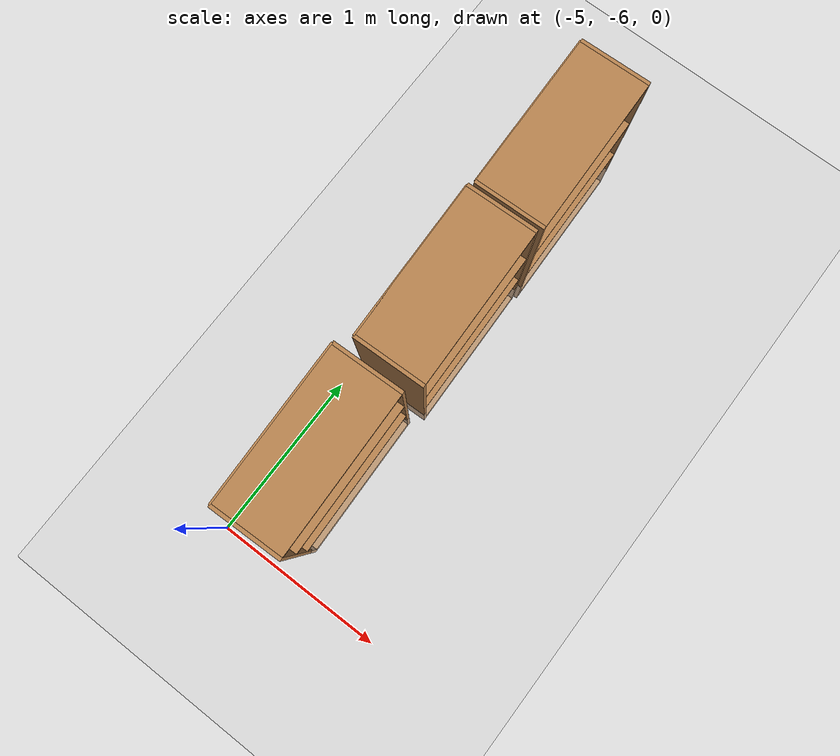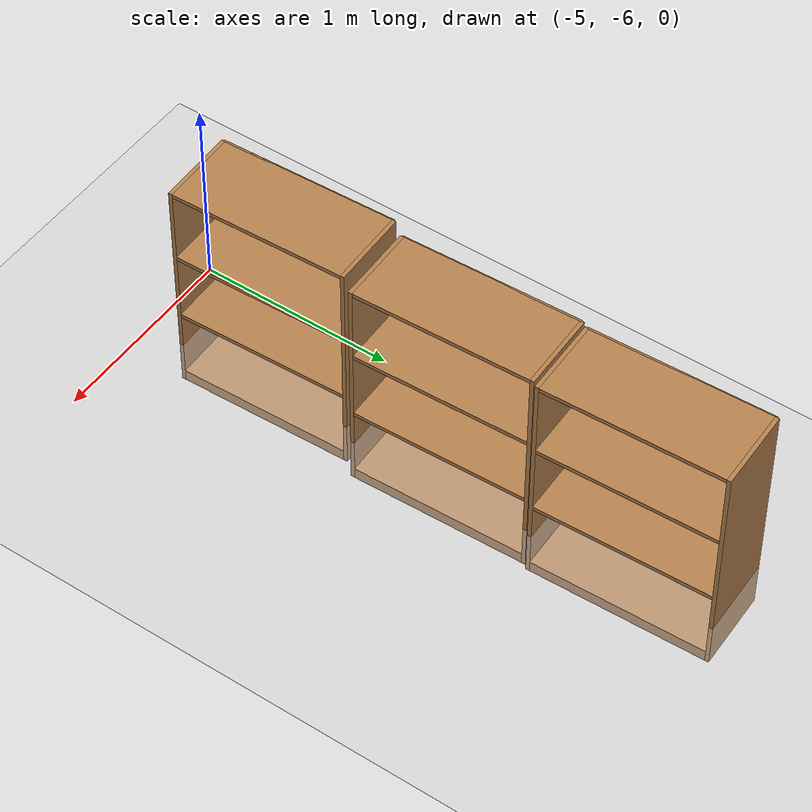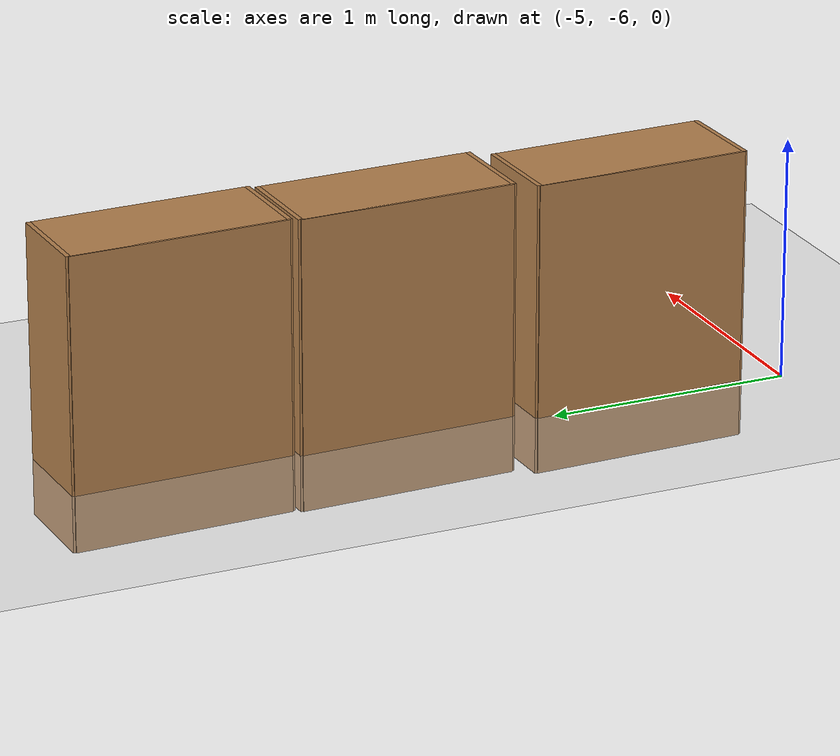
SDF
<sdf version="1.7">
 <world name="default">
  <light name="sun" type="directional">
   <pose>0 0 10 0 -0 0</pose>
   <diffuse>0.8 0.8 0.8 1</diffuse>
   <specular>0.2 0.2 0.2 1</specular>
   <attenuation>
    <range>1000</range>
    <constant>0.9</constant>
    <linear>0.01</linear>
    <quadratic>0.001</quadratic>
   </attenuation>
   <direction>-0.5 0.1 -0.9</direction>
   <spot><inner_angle>0</inner_angle><outer_angle>0</outer_angle><falloff>0</falloff></spot>
  </light>
  <model name="ground_plane">
   <static>1</static>
   <link name="link">
    <collision name="collision">
     <geometry><plane><normal>0 0 1</normal><size>100 100</size></plane></geometry>
     <surface>
      <contact><collide_bitmask>65535</collide_bitmask></contact>
      <friction><ode><mu>100</mu><mu2>50</mu2></ode></friction>
     </surface>
    </collision>
    <visual name="visual">
     <cast_shadows>0</cast_shadows>
     <geometry><plane><normal>0 0 1</normal><size>100 100</size></plane></geometry>
     <material>
      <script><uri>file://media/materials/scripts/gazebo.material</uri><name>Gazebo/Grey</name></script>
     </material>
    </visual>
   </link>
  </model>
  <gravity>0 0 -9.8</gravity>
  <magnetic_field>6e-06 2.3e-05 -4.2e-05</magnetic_field>
  <atmosphere type="adiabatic"/>
  <physics type="ode">
   <max_step_size>0.001</max_step_size>
   <real_time_factor>1</real_time_factor>
   <real_time_update_rate>1000</real_time_update_rate>
  </physics>
  <scene><ambient>0.4 0.4 0.4 1</ambient><background>0.7 0.7 0.7 1</background><shadows>1</shadows></scene>
  <spherical_coordinates>
   <surface_model>EARTH_WGS84</surface_model>
   <latitude_deg>0</latitude_deg>
   <longitude_deg>0</longitude_deg>
   <elevation>0</elevation>
   <heading_deg>0</heading_deg>
  </spherical_coordinates>
  <model name="bookshelf">
   <static>1</static>
   <link name="link">
    <inertial><mass>1</mass></inertial>
    <collision name="back">
     <pose>0 0.005 0.6 0 -0 0</pose>
     <geometry><box><size>0.9 0.01 1.2</size></box></geometry>
    </collision>
    <visual name="visual1">
     <pose>0 0.005 0.6 0 -0 0</pose>
     <geometry><box><size>0.9 0.01 1.2</size></box></geometry>
     <material>
      <script><uri>file://media/materials/scripts/gazebo.material</uri><name>Gazebo/Wood</name></script>
     </material>
    </visual>
    <collision name="left_side">
     <pose>0.45 -0.195 0.6 0 -0 0</pose>
     <geometry><box><size>0.02 0.4 1.2</size></box></geometry>
    </collision>
    <visual name="visual2">
     <pose>0.45 -0.195 0.6 0 -0 0</pose>
     <geometry><box><size>0.02 0.4 1.2</size></box></geometry>
     <material>
      <script><uri>file://media/materials/scripts/gazebo.material</uri><name>Gazebo/Wood</name></script>
     </material>
    </visual>
    <collision name="right_side">
     <pose>-0.45 -0.195 0.6 0 -0 0</pose>
     <geometry><box><size>0.02 0.4 1.2</size></box></geometry>
    </collision>
    <visual name="visual3">
     <pose>-0.45 -0.195 0.6 0 -0 0</pose>
     <geometry><box><size>0.02 0.4 1.2</size></box></geometry>
     <material>
      <script><uri>file://media/materials/scripts/gazebo.material</uri><name>Gazebo/Wood</name></script>
     </material>
    </visual>
    <collision name="bottom">
     <pose>0 -0.195 0.03 0 -0 0</pose>
     <geometry><box><size>0.88 0.4 0.06</size></box></geometry>
    </collision>
    <visual name="visual4">
     <pose>0 -0.195 0.03 0 -0 0</pose>
     <geometry><box><size>0.88 0.4 0.06</size></box></geometry>
     <material>
      <script><uri>file://media/materials/scripts/gazebo.material</uri><name>Gazebo/Wood</name></script>
     </material>
    </visual>
    <collision name="top">
     <pose>0 -0.195 1.19 0 -0 0</pose>
     <geometry><box><size>0.88 0.4 0.02</size></box></geometry>
    </collision>
    <visual name="visual5">
     <pose>0 -0.195 1.19 0 -0 0</pose>
     <geometry><box><size>0.88 0.4 0.02</size></box></geometry>
     <material>
      <script><uri>file://media/materials/scripts/gazebo.material</uri><name>Gazebo/Wood</name></script>
     </material>
    </visual>
    <collision name="low_shelf">
     <pose>0 -0.195 0.43 0 -0 0</pose>
     <geometry><box><size>0.88 0.4 0.02</size></box></geometry>
    </collision>
    <visual name="visual6">
     <pose>0 -0.195 0.43 0 -0 0</pose>
     <geometry><box><size>0.88 0.4 0.02</size></box></geometry>
     <material>
      <script><uri>file://media/materials/scripts/gazebo.material</uri><name>Gazebo/Wood</name></script>
     </material>
    </visual>
    <collision name="high_shelf">
     <pose>0 -0.195 0.8 0 -0 0</pose>
     <geometry><box><size>0.88 0.4 0.02</size></box></geometry>
    </collision>
    <visual name="visual7">
     <pose>0 -0.195 0.8 0 -0 0</pose>
     <geometry><box><size>0.88 0.4 0.02</size></box></geometry>
     <material>
      <script><uri>file://media/materials/scripts/gazebo.material</uri><name>Gazebo/Wood</name></script>
     </material>
    </visual>
   </link>
   <pose>-4.96331 -5.38402 -0.23681 0 -0 1.60019</pose>
  </model>
  <model name="bookshelf_clone">
   <static>1</static>
   <link name="link">
    <inertial><mass>1</mass></inertial>
    <collision name="back">
     <pose>0 0.005 0.6 0 -0 0</pose>
     <geometry><box><size>0.9 0.01 1.2</size></box></geometry>
    </collision>
    <visual name="visual1">
     <pose>0 0.005 0.6 0 -0 0</pose>
     <geometry><box><size>0.9 0.01 1.2</size></box></geometry>
     <material>
      <script><uri>file://media/materials/scripts/gazebo.material</uri><name>Gazebo/Wood</name></script>
     </material>
    </visual>
    <collision name="left_side">
     <pose>0.45 -0.195 0.6 0 -0 0</pose>
     <geometry><box><size>0.02 0.4 1.2</size></box></geometry>
    </collision>
    <visual name="visual2">
     <pose>0.45 -0.195 0.6 0 -0 0</pose>
     <geometry><box><size>0.02 0.4 1.2</size></box></geometry>
     <material>
      <script><uri>file://media/materials/scripts/gazebo.material</uri><name>Gazebo/Wood</name></script>
     </material>
    </visual>
    <collision name="right_side">
     <pose>-0.45 -0.195 0.6 0 -0 0</pose>
     <geometry><box><size>0.02 0.4 1.2</size></box></geometry>
    </collision>
    <visual name="visual3">
     <pose>-0.45 -0.195 0.6 0 -0 0</pose>
     <geometry><box><size>0.02 0.4 1.2</size></box></geometry>
     <material>
      <script><uri>file://media/materials/scripts/gazebo.material</uri><name>Gazebo/Wood</name></script>
     </material>
    </visual>
    <collision name="bottom">
     <pose>0 -0.195 0.03 0 -0 0</pose>
     <geometry><box><size>0.88 0.4 0.06</size></box></geometry>
    </collision>
    <visual name="visual4">
     <pose>0 -0.195 0.03 0 -0 0</pose>
     <geometry><box><size>0.88 0.4 0.06</size></box></geometry>
     <material>
      <script><uri>file://media/materials/scripts/gazebo.material</uri><name>Gazebo/Wood</name></script>
     </material>
    </visual>
    <collision name="top">
     <pose>0 -0.195 1.19 0 -0 0</pose>
     <geometry><box><size>0.88 0.4 0.02</size></box></geometry>
    </collision>
    <visual name="visual5">
     <pose>0 -0.195 1.19 0 -0 0</pose>
     <geometry><box><size>0.88 0.4 0.02</size></box></geometry>
     <material>
      <script><uri>file://media/materials/scripts/gazebo.material</uri><name>Gazebo/Wood</name></script>
     </material>
    </visual>
    <collision name="low_shelf">
     <pose>0 -0.195 0.43 0 -0 0</pose>
     <geometry><box><size>0.88 0.4 0.02</size></box></geometry>
    </collision>
    <visual name="visual6">
     <pose>0 -0.195 0.43 0 -0 0</pose>
     <geometry><box><size>0.88 0.4 0.02</size></box></geometry>
     <material>
      <script><uri>file://media/materials/scripts/gazebo.material</uri><name>Gazebo/Wood</name></script>
     </material>
    </visual>
    <collision name="high_shelf">
     <pose>0 -0.195 0.8 0 -0 0</pose>
     <geometry><box><size>0.88 0.4 0.02</size></box></geometry>
    </collision>
    <visual name="visual7">
     <pose>0 -0.195 0.8 0 -0 0</pose>
     <geometry><box><size>0.88 0.4 0.02</size></box></geometry>
     <material>
      <script><uri>file://media/materials/scripts/gazebo.material</uri><name>Gazebo/Wood</name></script>
     </material>
    </visual>
   </link>
   <pose>-4.93266 -4.40233 -0.23681 0 -0 1.60019</pose>
  </model>
  <model name="bookshelf_clone_0">
   <static>1</static>
   <link name="link">
    <inertial><mass>1</mass></inertial>
    <collision name="back">
     <pose>0 0.005 0.6 0 -0 0</pose>
     <geometry><box><size>0.9 0.01 1.2</size></box></geometry>
    </collision>
    <visual name="visual1">
     <pose>0 0.005 0.6 0 -0 0</pose>
     <geometry><box><size>0.9 0.01 1.2</size></box></geometry>
     <material>
      <script><uri>file://media/materials/scripts/gazebo.material</uri><name>Gazebo/Wood</name></script>
     </material>
    </visual>
    <collision name="left_side">
     <pose>0.45 -0.195 0.6 0 -0 0</pose>
     <geometry><box><size>0.02 0.4 1.2</size></box></geometry>
    </collision>
    <visual name="visual2">
     <pose>0.45 -0.195 0.6 0 -0 0</pose>
     <geometry><box><size>0.02 0.4 1.2</size></box></geometry>
     <material>
      <script><uri>file://media/materials/scripts/gazebo.material</uri><name>Gazebo/Wood</name></script>
     </material>
    </visual>
    <collision name="right_side">
     <pose>-0.45 -0.195 0.6 0 -0 0</pose>
     <geometry><box><size>0.02 0.4 1.2</size></box></geometry>
    </collision>
    <visual name="visual3">
     <pose>-0.45 -0.195 0.6 0 -0 0</pose>
     <geometry><box><size>0.02 0.4 1.2</size></box></geometry>
     <material>
      <script><uri>file://media/materials/scripts/gazebo.material</uri><name>Gazebo/Wood</name></script>
     </material>
    </visual>
    <collision name="bottom">
     <pose>0 -0.195 0.03 0 -0 0</pose>
     <geometry><box><size>0.88 0.4 0.06</size></box></geometry>
    </collision>
    <visual name="visual4">
     <pose>0 -0.195 0.03 0 -0 0</pose>
     <geometry><box><size>0.88 0.4 0.06</size></box></geometry>
     <material>
      <script><uri>file://media/materials/scripts/gazebo.material</uri><name>Gazebo/Wood</name></script>
     </material>
    </visual>
    <collision name="top">
     <pose>0 -0.195 1.19 0 -0 0</pose>
     <geometry><box><size>0.88 0.4 0.02</size></box></geometry>
    </collision>
    <visual name="visual5">
     <pose>0 -0.195 1.19 0 -0 0</pose>
     <geometry><box><size>0.88 0.4 0.02</size></box></geometry>
     <material>
      <script><uri>file://media/materials/scripts/gazebo.material</uri><name>Gazebo/Wood</name></script>
     </material>
    </visual>
    <collision name="low_shelf">
     <pose>0 -0.195 0.43 0 -0 0</pose>
     <geometry><box><size>0.88 0.4 0.02</size></box></geometry>
    </collision>
    <visual name="visual6">
     <pose>0 -0.195 0.43 0 -0 0</pose>
     <geometry><box><size>0.88 0.4 0.02</size></box></geometry>
     <material>
      <script><uri>file://media/materials/scripts/gazebo.material</uri><name>Gazebo/Wood</name></script>
     </material>
    </visual>
    <collision name="high_shelf">
     <pose>0 -0.195 0.8 0 -0 0</pose>
     <geometry><box><size>0.88 0.4 0.02</size></box></geometry>
    </collision>
    <visual name="visual7">
     <pose>0 -0.195 0.8 0 -0 0</pose>
     <geometry><box><size>0.88 0.4 0.02</size></box></geometry>
     <material>
      <script><uri>file://media/materials/scripts/gazebo.material</uri><name>Gazebo/Wood</name></script>
     </material>
    </visual>
   </link>
   <pose>-4.94052 -3.46746 -0.23681 0 -0 1.60019</pose>
  </model>
  <model name="kapıpı">
   <link name="link">
    <inertial>
     <mass>1</mass>
     <inertia>
      <ixx>0.166667</ixx>
      <ixy>0</ixy>
      <ixz>0</ixz>
      <iyy>0.166667</iyy>
      <iyz>0</iyz>
      <izz>0.166667</izz>
     </inertia>
    </inertial>
    <collision name="collision">
     <geometry><box><size>0.967965 0.176722 2.43125</size></box></geometry>
     <surface>
      <friction>
       <ode><mu>1</mu><mu2>1</mu2><fdir1>0 0 0</fdir1><slip1>0</slip1><slip2>0</slip2></ode>
       <torsional>
        <coefficient>1</coefficient>
        <patch_radius>0</patch_radius>
        <surface_radius>0</surface_radius>
        <use_patch_radius>1</use_patch_radius>
        <ode><slip>0</slip></ode>
       </torsional>
      </friction>
      <bounce><restitution_coefficient>0</restitution_coefficient><threshold>1e+06</threshold></bounce>
      <contact>
       <collide_without_contact>0</collide_without_contact>
       <collide_without_contact_bitmask>1</collide_without_contact_bitmask>
       <collide_bitmask>1</collide_bitmask>
       <ode>
        <soft_cfm>0</soft_cfm>
        <soft_erp>0.2</soft_erp>
        <kp>1e+13</kp>
        <kd>1</kd>
        <max_vel>0.01</max_vel>
        <min_depth>0</min_depth>
       </ode>
       <bullet>
        <split_impulse>1</split_impulse>
        <split_impulse_penetration_threshold>-0.01</split_impulse_penetration_threshold>
        <soft_cfm>0</soft_cfm>
        <soft_erp>0.2</soft_erp>
        <kp>1e+13</kp>
        <kd>1</kd>
       </bullet>
      </contact>
     </surface>
    </collision>
   </link>
   <static>0</static>
   <pose>-3.65095 -11.4528 1.40542 0 -1e-06 -0.009729</pose>
  </model>
  <model name="mutfak_tezgah">
   <link name="link">
    <inertial>
     <mass>19.6412</mass>
     <inertia><ixx>13.9448</ixx><ixy>0</ixy><ixz>0</ixz><iyy>96.2792</iyy><iyz>0</iyz><izz>85.6079</izz></inertia>
    </inertial>
    <pose>4.43558 0.603929 0 0 0 -0.051518</pose>
    <gravity>0</gravity>
    <collision name="collision">
     <geometry><box><size>7.16262 1 2.74222</size></box></geometry>
     <surface>
      <friction>
       <ode><mu>1</mu><mu2>1</mu2><fdir1>0 0 0</fdir1><slip1>0</slip1><slip2>0</slip2></ode>
       <torsional>
        <coefficient>1</coefficient>
        <patch_radius>0</patch_radius>
        <surface_radius>0</surface_radius>
        <use_patch_radius>1</use_patch_radius>
        <ode><slip>0</slip></ode>
       </torsional>
      </friction>
      <bounce><restitution_coefficient>0</restitution_coefficient><threshold>1e+06</threshold></bounce>
      <contact>
       <collide_without_contact>0</collide_without_contact>
       <collide_without_contact_bitmask>1</collide_without_contact_bitmask>
       <collide_bitmask>1</collide_bitmask>
       <ode>
        <soft_cfm>0</soft_cfm>
        <soft_erp>0.2</soft_erp>
        <kp>1e+13</kp>
        <kd>1</kd>
        <max_vel>0.01</max_vel>
        <min_depth>0</min_depth>
       </ode>
       <bullet>
        <split_impulse>1</split_impulse>
        <split_impulse_penetration_threshold>-0.01</split_impulse_penetration_threshold>
        <soft_cfm>0</soft_cfm>
        <soft_erp>0.2</soft_erp>
        <kp>1e+13</kp>
        <kd>1</kd>
       </bullet>
      </contact>
     </surface>
    </collision>
   </link>
   <static>1</static>
   <pose>-5.81097 9.85083 0.5 0 -0 0</pose>
  </model>
 </world>
</sdf>
